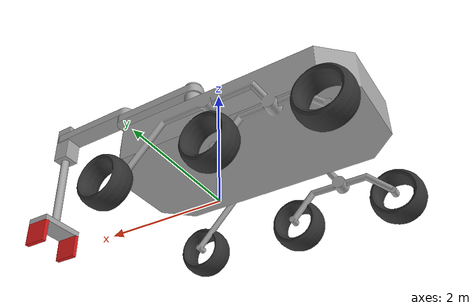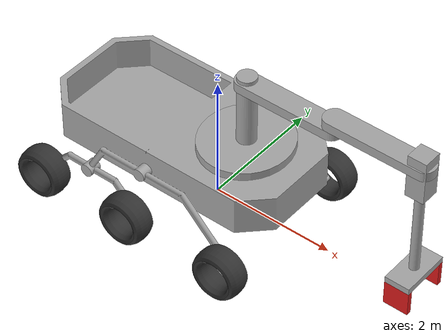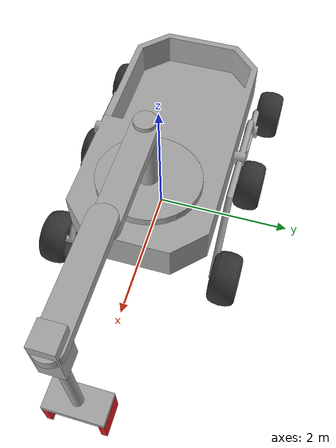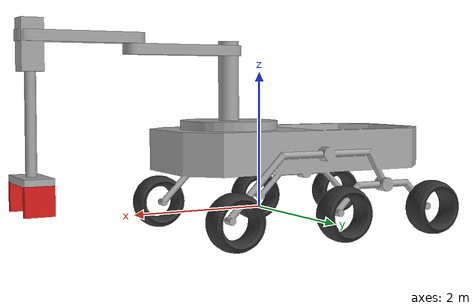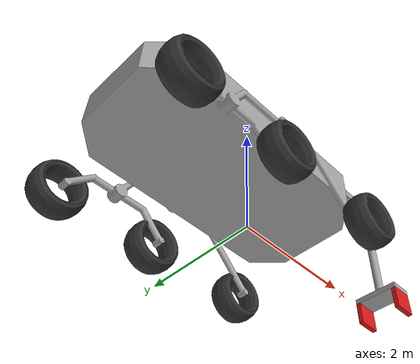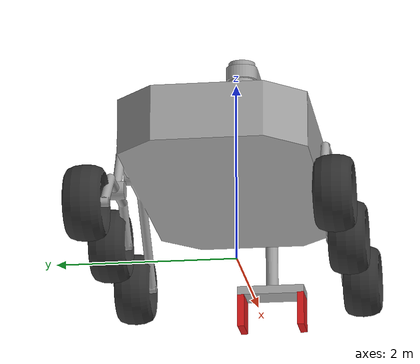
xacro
<?xml version="1.0"?>
<robot name="robot_Practica2" xmlns:xacro="http://wiki.ros.org/xacro">

    <xacro:include filename="$(find rover_description)/urdf/utils/utils.urdf.xacro"/>
    <xacro:include filename="$(find rover_description)/urdf/base/robot_base.urdf.xacro"/>
    <xacro:include filename="$(find rover_description)/urdf/wheels/rover_wheel.urdf.xacro"/>
    <xacro:include filename="$(find rover_description)/urdf/arm/scara.urdf.xacro"/>
    <xacro:include filename="$(find rover_description)/urdf/arm/gripper.urdf.xacro"/>
    <xacro:include filename="$(find rover_description)/urdf/sensors/imu_sensor.urdf.xacro"/>
    <xacro:include filename="$(find rover_description)/urdf/sensors/camera.urdf.xacro"/>
    <xacro:include filename="$(find rover_description)/urdf/sensors/sensors.urdf.xacro"/>
    <xacro:include filename="$(find rover_moveit_config)/config/robot_Practica2.ros2_control.xacro"/>

    <xacro:property name="PI" value="3.1415926535897931"/>

    <xacro:property name="wheelA_1_xyz" value="1.07987 -1.32843 -0.83009"/>
    <xacro:property name="wheelA_2_xyz" value="-0.65003 -1.32843 -0.83009"/>
    <xacro:property name="wheelA_3_xyz" value="-2.23201 -1.32843 -0.83009"/>

    <xacro:property name="wheelB_1_xyz" value="1.07987 1.32831 -0.83009"/>
    <xacro:property name="wheelB_2_xyz" value="-0.65003 1.32832 -0.83009"/>
    <xacro:property name="wheelB_3_xyz" value="-2.23201 1.32832 -0.83009"/>

    <xacro:arg name="prefix" default=""/>
    <xacro:arg name="config_controllers" default="$(find rover_description)/config/rover_controllers.yaml"/>
    <xacro:arg name="moveit_controllers" default="$(find rover_moveit_config)/config/ros2_controllers.yaml"/>
    <xacro:arg name="initial_positions_file" default="$(find rover_moveit_config)/config/initial_positions.yaml"/>

    <xacro:robot_base prefix="$(arg prefix)"/>

    <xacro:rover_wheel prefix="wheelA_1" parent="base_link">
        <origin xyz="${wheelA_1_xyz}" rpy="1.57080 0 0"/>
    </xacro:rover_wheel>

    <xacro:rover_wheel prefix="wheelA_2" parent="base_link">
        <origin xyz="${wheelA_2_xyz}" rpy="1.57080 0 0"/>
    </xacro:rover_wheel>

    <xacro:rover_wheel prefix="wheelA_3" parent="base_link">
        <origin xyz="${wheelA_3_xyz}" rpy="1.57080 0 0"/>
    </xacro:rover_wheel>

    <xacro:rover_wheel prefix="wheelB_1" parent="base_link">
        <origin xyz="${wheelB_1_xyz}" rpy="1.57080 0 0"/>
    </xacro:rover_wheel>

    <xacro:rover_wheel prefix="wheelB_2" parent="base_link">
        <origin xyz="${wheelB_2_xyz}" rpy="1.57080 0 0"/>
    </xacro:rover_wheel>

    <xacro:rover_wheel prefix="wheelB_3" parent="base_link">
        <origin xyz="${wheelB_3_xyz}" rpy="1.57080 0 0"/>
    </xacro:rover_wheel>

    <xacro:scara_arm
        prefix="$(arg prefix)"
        parent="base_link"/>

    <xacro:robot_gripper
        prefix="$(arg prefix)"
        parent="base_endEffector_link"/>

    <xacro:robot_sensors prefix="$(arg prefix)"/>

    <xacro:robot_Practica2_ros2_control
        name="GazeboSimSystem"
        initial_positions_file="$(arg initial_positions_file)"/>

    <gazebo>
        <plugin filename="libgz_ros2_control-system.so"
                name="gz_ros2_control::GazeboSimROS2ControlPlugin">
            <parameters>$(arg config_controllers)</parameters>
            <parameters>$(arg moveit_controllers)</parameters>
            <controller_manager_name>controller_manager</controller_manager_name>
            <hold_joints>true</hold_joints>
            <position_proportional_gain>0.1</position_proportional_gain>
        </plugin>
    </gazebo>

</robot>

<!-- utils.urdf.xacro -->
<robot xmlns:xacro="http://wiki.ros.org/xacro">

    <xacro:property name="mesh_dir" value="package://rover_description/meshes/dae"/>

    <xacro:macro name="solid_cuboid_inertia" params="m w h d">
        <inertia ixx="${(m*(h*h+d*d))/12.0}" ixy="0.0" ixz="0.0"
                iyy="${(m*(w*w+d*d))/12.0}" iyz="0.0"
                izz="${(m*(w*w+h*h))/12.0}"/>
    </xacro:macro>

</robot>

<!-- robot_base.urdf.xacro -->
<robot xmlns:xacro="http://wiki.ros.org/xacro">

    <xacro:macro name="robot_base" params="prefix">

        <link name="base_footprint"/>

        <joint name="base_footprint_joint" type="fixed">
        <parent link="base_footprint"/>
        <child link="base_link"/>
        <origin xyz="0 0 0.83009" rpy="0 0 0"/>
        </joint>

        <link name="base_link">

        <!-- SUELO CAJA -->
        <collision name="floor_right">
            <origin xyz="-1.35 0 -0.15" rpy="0 0 0"/>
            <geometry>
            <box size="1.9 1.9 0.05"/>
            </geometry>
        </collision>

        <!-- PARED DERECHA -->
        <collision name="wall_right">
            <origin xyz="-2.30 0 0.10" rpy="0 0 0"/>
            <geometry>
            <box size="0.05 1.9 0.6"/>
            </geometry>
        </collision>

        <!-- PARED CENTRAL -->
        <collision name="wall_middle">
            <origin xyz="-0.40 0 0.10" rpy="0 0 0"/>
            <geometry>
            <box size="0.05 1.9 0.6"/>
            </geometry>
        </collision>

        <!-- PARED TRASERA -->
        <collision name="wall_back">
            <origin xyz="-1.35 0.95 0.10" rpy="0 0 0"/>
            <geometry>
            <box size="1.9 0.05 0.6"/>
            </geometry>
        </collision>

        <!-- PARED FRONTAL -->
        <collision name="wall_front">
            <origin xyz="-1.35 -0.95 0.10" rpy="0 0 0"/>
            <geometry>
            <box size="1.9 0.05 0.6"/>
            </geometry>
        </collision>

        <!-- PLATAFORMA -->
        <collision name="platform_left">
            <origin xyz="0.60 0 0.10" rpy="0 0 0"/>
            <geometry>
            <box size="2.4 2.2 0.05"/>
            </geometry>
        </collision>

        <inertial>
            <origin xyz="0 0 0" rpy="0 0 0"/>
            <mass value="80.00000"/>
            <inertia ixx="41.28289" ixy="-0.00802" ixz="9.08471"
                    iyy="106.15301" iyz="0.02896" izz="122.29248"/>
        </inertial>

        <visual name="base">
            <origin xyz="0 0 0" rpy="0 0 3.14159"/>
            <geometry>
            <mesh filename="${mesh_dir}/Cube.005.dae" scale="2.00000 1.00000 0.05000"/>
            </geometry>
            <material name="base_grey">
            <color rgba="0.65 0.65 0.65 1.0"/>
            </material>
        </visual>

        </link>

        <gazebo reference="base_link">
            <material>
                <ambient>0.65 0.65 0.65 1.0</ambient>
                <diffuse>0.65 0.65 0.65 1.0</diffuse>
                <specular>0.10 0.10 0.10 1.0</specular>
            </material>
        </gazebo>

    </xacro:macro>

</robot>

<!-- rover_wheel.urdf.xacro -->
<robot name="wheel" xmlns:xacro="http://wiki.ros.org/xacro">

  <xacro:macro name="rover_wheel" params="prefix parent *origin">

    <xacro:property name="mesh_name" value="Torus.dae"/>
    <xacro:property name="visual_z" value="0.04000"/>
    <xacro:property name="collision_z" value="0.04000"/>
    <xacro:property name="inertial_z" value="0.04000"/>

    <xacro:property name="mass_value" value="5.00000"/>
    <xacro:property name="ixx_value" value="0.22705"/>
    <xacro:property name="ixy_value" value="0.00000"/>
    <xacro:property name="ixz_value" value="0.00000"/>
    <xacro:property name="iyy_value" value="0.37534"/>
    <xacro:property name="iyz_value" value="0.00000"/>
    <xacro:property name="izz_value" value="0.22705"/>

    <xacro:if value="${prefix == 'wheelA_1'}">
        <xacro:property name="mesh_name" value="Torus.005.dae"/>
        <xacro:property name="visual_z" value="-0.04000"/>
        <xacro:property name="collision_z" value="-0.04000"/>
        <xacro:property name="inertial_z" value="-0.04000"/>
    </xacro:if>

    <xacro:if value="${prefix == 'wheelA_2'}">
        <xacro:property name="mesh_name" value="Torus.004.dae"/>
        <xacro:property name="visual_z" value="-0.04000"/>
        <xacro:property name="collision_z" value="-0.04000"/>
        <xacro:property name="inertial_z" value="-0.04000"/>
    </xacro:if>

    <xacro:if value="${prefix == 'wheelA_3'}">
        <xacro:property name="mesh_name" value="Torus.003.dae"/>
        <xacro:property name="visual_z" value="-0.04000"/>
        <xacro:property name="collision_z" value="-0.04000"/>
        <xacro:property name="inertial_z" value="-0.04000"/>
    </xacro:if>

    <xacro:if value="${prefix == 'wheelB_1'}">
        <xacro:property name="mesh_name" value="Torus.dae"/>
        <xacro:property name="visual_z" value="0.04000"/>
        <xacro:property name="collision_z" value="0.04000"/>
        <xacro:property name="inertial_z" value="0.00000"/>

        <xacro:property name="mass_value" value="2.0"/>
        <xacro:property name="ixx_value" value="0.05"/>
        <xacro:property name="ixy_value" value="0.0"/>
        <xacro:property name="ixz_value" value="0.0"/>
        <xacro:property name="iyy_value" value="0.05"/>
        <xacro:property name="iyz_value" value="0.0"/>
        <xacro:property name="izz_value" value="0.05"/>
    </xacro:if>

    <xacro:if value="${prefix == 'wheelB_2'}">
        <xacro:property name="mesh_name" value="Torus.001.dae"/>
    </xacro:if>

    <xacro:if value="${prefix == 'wheelB_3'}">
        <xacro:property name="mesh_name" value="Torus.002.dae"/>
    </xacro:if>

    <joint name="${prefix}_link_joint" type="continuous">
        <parent link="${parent}"/>
        <child link="${prefix}_link"/>
        <xacro:insert_block name="origin"/>
        <axis xyz="0 0 1"/>
        <limit effort="500.0" velocity="40.0"/>
    </joint>

    <link name="${prefix}_link">

      <collision name="${prefix}_collision">
        <origin xyz="0 0 0" rpy="0 0 0"/>
        <geometry>
          <cylinder radius="0.30" length="0.12"/>
        </geometry>
      </collision>

      <visual name="${prefix}">
        <origin xyz="0 0 ${visual_z}" rpy="0 0 0"/>
        <geometry>
          <mesh filename="${mesh_dir}/${mesh_name}" scale="0.32000 0.32000 0.80000"/>
        </geometry>
        <material name="wheel_dark">
          <color rgba="0.20 0.20 0.20 1.0"/>
        </material>
      </visual>

      <inertial>
        <origin xyz="0 0 ${inertial_z}" rpy="0 0 0"/>
        <mass value="${mass_value}"/>
        <inertia ixx="${ixx_value}" ixy="${ixy_value}" ixz="${ixz_value}"
                iyy="${iyy_value}" iyz="${iyz_value}" izz="${izz_value}"/>
      </inertial>

    </link>

    <gazebo reference="${prefix}_link">
      <material>
        <ambient>0.20 0.20 0.20 1.0</ambient>
        <diffuse>0.20 0.20 0.20 1.0</diffuse>
        <specular>0.05 0.05 0.05 1.0</specular>
      </material>

      <!-- Menos fricción lateral para permitir skid steering -->
      <mu1>0.8</mu1>
      <mu2>0.02</mu2>
      <slip1>0.0</slip1>
      <slip2>1.0</slip2>
    </gazebo>

  </xacro:macro>

</robot>

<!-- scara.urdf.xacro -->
<robot xmlns:xacro="http://wiki.ros.org/xacro">

    <xacro:macro name="scara_arm" params="prefix parent">

        <joint name="base_gripper_link_joint" type="fixed">
        <parent link="${parent}"/>
        <child link="base_gripper_link"/>
        <origin xyz="0.51563 -0.00006 0.72658" rpy="0 0 0"/>
        </joint>

        <link name="base_gripper_link">
        <collision name="base_gripper_collision">
            <origin xyz="0 0 0" rpy="0 0 0"/>
            <geometry>
            <mesh filename="${mesh_dir}/Cylinder.dae" scale="0.70000 0.75000 0.07647"/>
            </geometry>
        </collision>
        <visual name="base_gripper">
            <origin xyz="0 0 0" rpy="0 0 0"/>
            <geometry>
            <mesh filename="${mesh_dir}/Cylinder.dae" scale="0.70000 0.75000 0.07647"/>
            </geometry>
            <material name="arm_grey">
            <color rgba="0.65 0.65 0.65 1.0"/>
            </material>
        </visual>
        <inertial>
            <origin xyz="0 0 -0.17512" rpy="0 0 0"/>
            <mass value="20.00000"/>
            <inertia ixx="3.73641" ixy="0" ixz="0" iyy="3.48927" iyz="0" izz="3.61756"/>
        </inertial>
        </link>

        <joint name="arm_1_link_joint" type="revolute">
        <parent link="base_gripper_link"/>
        <child link="arm_1_link"/>
        <origin xyz="0 0 0.74424" rpy="0 0 0"/>
        <axis xyz="0 0 1"/>
        <limit lower="-3.14" upper="3.14" effort="50" velocity="2"/>
        </joint>

        <link name="arm_1_link">
        <collision name="arm_1_collision">
            <origin xyz="0.72000 0.00000 0.01000" rpy="0 0 0"/>
            <geometry>
            <mesh filename="${mesh_dir}/Cylinder.002.dae" scale="0.15000 0.17500 0.07500"/>
            </geometry>
        </collision>
        <visual name="arm_1">
            <origin xyz="0.72000 0.00000 0.01000" rpy="0 0 0"/>
            <geometry>
            <mesh filename="${mesh_dir}/Cylinder.002.dae" scale="0.15000 0.17500 0.07500"/>
            </geometry>
            <material name="arm_grey">
                <color rgba="0.65 0.65 0.65 1.0"/>
            </material>
        </visual>
        <inertial>
            <origin xyz="0 0 0" rpy="0 0 0"/>
            <mass value="5.0"/>
            <inertia ixx="0.1" ixy="0.0" ixz="0.0" iyy="0.1" iyz="0.0" izz="0.1"/>
        </inertial>
        </link>

        <joint name="arm_2_link_joint" type="revolute">
        <parent link="arm_1_link"/>
        <child link="arm_2_link"/>
        <origin xyz="1.46 0 0.15" rpy="0 0 0"/>
        <axis xyz="0 0 1"/>
        <limit lower="-2.356" upper="2.356" effort="50" velocity="2"/>
        </joint>

        <link name="arm_2_link">
        <visual name="arm_2">
            <origin xyz="0.76000 0.00000 0.01000" rpy="0 0 0"/>
            <geometry>
            <mesh filename="${mesh_dir}/Cylinder.004.dae" scale="0.15000 0.17500 0.07500"/>
            </geometry>
            <material name="arm_grey">
                <color rgba="0.65 0.65 0.65 1.0"/>
            </material>
        </visual>
        <inertial>
            <origin xyz="0 0 0" rpy="0 0 0"/>
            <mass value="5.0"/>
            <inertia ixx="0.1" ixy="0.0" ixz="0.0" iyy="0.1" iyz="0.0" izz="0.1"/>
        </inertial>
        </link>

        <joint name="arm_3_link_joint" type="revolute">
        <parent link="arm_2_link"/>
        <child link="arm_3_link"/>
        <origin xyz="1.46 0 -0.11" rpy="0 0 0"/>
        <axis xyz="0 0 1"/>
        <limit lower="-3.14" upper="3.14" effort="50" velocity="2"/>
        </joint>

        <link name="arm_3_link">
        <collision name="arm_3_collision">
            <origin xyz="0 0 0" rpy="0 0 0"/>
            <geometry>
            <mesh filename="${mesh_dir}/Cylinder.001.dae" scale="0.15000 0.15000 0.35000"/>
            </geometry>
        </collision>
        <visual name="arm_3">
            <origin xyz="0 0 0" rpy="0 0 0"/>
            <geometry>
            <box size="0.30000 0.30000 0.70000"/>
            </geometry>
            <material name="arm_grey">
                <color rgba="0.65 0.65 0.65 1.0"/>
            </material>
        </visual>
        <inertial>
            <origin xyz="0 0 0" rpy="0 0 0"/>
            <mass value="3.51000"/>
            <inertia ixx="0.16965" ixy="0.00000" ixz="0.00000"
                    iyy="0.16965" iyz="0.00000" izz="0.05265"/>
        </inertial>
        </link>

        <joint name="arm_4_link_joint" type="prismatic">
        <parent link="arm_3_link"/>
        <child link="arm_4_link"/>
        <origin xyz="0 0 -1.05" rpy="0 0 0"/>
        <axis xyz="0 0 1"/>
        <limit lower="-0.38" upper="1.5" effort="50" velocity="1.0"/>
        </joint>

        <link name="arm_4_link">
        <collision name="arm_4_collision">
            <origin xyz="0 0 0" rpy="0 0 0"/>
            <geometry>
            <mesh filename="${mesh_dir}/Cylinder.003.dae" scale="0.07500 0.07500 0.75000"/>
            </geometry>
        </collision>
        <visual name="arm_4">
            <origin xyz="0 0 0" rpy="0 0 0"/>
            <geometry>
            <cylinder radius="0.07500" length="1.50000"/>
            </geometry>
            <material name="arm_grey">
                <color rgba="0.65 0.65 0.65 1.0"/>
            </material>
        </visual>
        <inertial>
            <origin xyz="0 0 0" rpy="0 0 0"/>
            <mass value="1.00000"/>
            <inertia ixx="0.18891" ixy="0.00000" ixz="0.00000"
                    iyy="0.18891" iyz="0.00000" izz="0.00281"/>
        </inertial>
        </link>

        <joint name="base_endEffector_link_joint" type="fixed">
        <parent link="arm_4_link"/>
        <child link="base_endEffector_link"/>
        <origin xyz="0 0 -0.73" rpy="0 0 0"/>
        </joint>

        <link name="base_endEffector_link">
        <collision name="base_endEffector_collision">
            <origin xyz="0 0 0" rpy="0 0 0"/>
            <geometry>
            <mesh filename="${mesh_dir}/Cube.001.dae" scale="0.20000 0.40000 0.05000"/>
            </geometry>
        </collision>
        <visual name="base_endEffector">
            <origin xyz="0 0 0" rpy="0 0 0"/>
            <geometry>
            <box size="0.40000 0.80000 0.10000"/>
            </geometry>
            <material name="arm_grey">
                <color rgba="0.65 0.65 0.65 1.0"/>
            </material>
        </visual>
        <inertial>
            <origin xyz="0 0 0" rpy="0 0 0"/>
            <mass value="1.00000"/>
            <inertia ixx="0.05417" ixy="0.00000" ixz="0.00000"
                    iyy="0.01417" iyz="0.00000" izz="0.06667"/>
        </inertial>
        </link>

    </xacro:macro>

</robot>

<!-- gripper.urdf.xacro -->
<robot xmlns:xacro="http://wiki.ros.org/xacro">

    <xacro:macro name="robot_gripper" params="prefix parent">

        <joint name="gripper_1_link_joint" type="prismatic">
        <parent link="${parent}"/>
        <child link="gripper_1_link"/>
        <origin xyz="0 -0.36 -0.24" rpy="-1.5708 0 0"/>
        <axis xyz="0 0 1"/>
        <limit lower="-0.02" upper="0.25" effort="100" velocity="1.0"/>
        </joint>

        <link name="gripper_1_link">
        <collision name="gripper_1_collision">
            <origin xyz="0 0 0" rpy="1.57080 0 0"/>
            <geometry>
            <mesh filename="${mesh_dir}/Cube.008.dae" scale="0.20000 0.04000 0.20000"/>
            </geometry>
        </collision>
        <visual name="gripper_1">
            <origin xyz="0 0 0" rpy="1.57080 0 0"/>
            <geometry>
            <box size="0.40000 0.08000 0.40000"/>
            </geometry>
            <material name="gripper_red">
                <color rgba="0.85 0.10 0.10 1.0"/>
            </material>
        </visual>
        <inertial>
            <origin xyz="0 0 0" rpy="0 0 0"/>
            <mass value="1.00000"/>
            <inertia ixx="0.01387" ixy="0.00000" ixz="0.00000"
                    iyy="0.02667" iyz="0.00000" izz="0.01387"/>
        </inertial>
        </link>

        <joint name="gripper_2_link_joint" type="prismatic">
        <parent link="${parent}"/>
        <child link="gripper_2_link"/>
        <origin xyz="0 0.36 -0.24" rpy="1.5708 0 0"/>
        <axis xyz="0 0 1"/>
        <limit lower="-0.02" upper="0.25" effort="100" velocity="1.0"/>
        </joint>

        <link name="gripper_2_link">
        <collision name="gripper_2_collision">
            <origin xyz="0 0 0" rpy="-1.57080 0 0"/>
            <geometry>
            <mesh filename="${mesh_dir}/Cube.009.dae" scale="0.20000 0.04000 0.20000"/>
            </geometry>
        </collision>
        <visual name="gripper_2">
            <origin xyz="0 0 0" rpy="-1.57080 0 0"/>
            <geometry>
            <box size="0.40000 0.08000 0.40000"/>
            </geometry>
            <material name="gripper_red">
                <color rgba="0.85 0.10 0.10 1.0"/>
            </material>
        </visual>
        <inertial>
            <origin xyz="0 0 0" rpy="0 0 0"/>
            <mass value="1.00000"/>
            <inertia ixx="0.01387" ixy="0.00000" ixz="0.00000"
                    iyy="0.02667" iyz="0.00000" izz="0.01387"/>
        </inertial>
        </link>

    </xacro:macro>

</robot>

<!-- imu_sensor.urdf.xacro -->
<robot xmlns:xacro="http://wiki.ros.org/xacro">

    <xacro:macro name="sensor_imu" params="prefix parent xyz topic">

        <joint name="${prefix}_joint" type="fixed">
        <parent link="${parent}"/>
        <child link="${prefix}_link"/>
        <origin xyz="${xyz}" rpy="0 0 0"/>
        </joint>

        <link name="${prefix}_link"/>

        <gazebo reference="${prefix}_link">
        <sensor name="${prefix}_sensor" type="imu">
            <always_on>1</always_on>
            <update_rate>30</update_rate>
            <topic>${topic}</topic>
        </sensor>
        </gazebo>

    </xacro:macro>

</robot>

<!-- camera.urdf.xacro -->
<robot xmlns:xacro="http://wiki.ros.org/xacro">

    <xacro:macro name="sensor_camera"
                params="frame_prefix parent xyz rpy horizontal_fov video_width video_height">

        <joint name="${frame_prefix}_camera_joint" type="fixed">
        <parent link="${parent}"/>
        <child link="${frame_prefix}_camera_frame"/>
        <origin xyz="${xyz}" rpy="${rpy}"/>
        </joint>

        <link name="${frame_prefix}_camera_frame"/>

        <joint name="${frame_prefix}_camera_optical_joint" type="fixed">
        <parent link="${frame_prefix}_camera_frame"/>
        <child link="${frame_prefix}_camera_optical_frame"/>
        <origin xyz="0 0 0" rpy="-1.57079632679 0 -1.57079632679"/>
        </joint>

        <link name="${frame_prefix}_camera_optical_frame"/>

        <gazebo reference="${frame_prefix}_camera_frame">
        <sensor name="${frame_prefix}_sensor" type="camera">
            <visualize>true</visualize>
            <update_rate>30</update_rate>
            <topic>/${frame_prefix}/image</topic>

            <camera>
            <horizontal_fov>${horizontal_fov}</horizontal_fov>
            <image>
                <width>${video_width}</width>
                <height>${video_height}</height>
                <format>R8G8B8</format>
            </image>
            <clip>
                <near>0.10</near>
                <far>15.0</far>
            </clip>
            <noise>
                <type>gaussian</type>
                <mean>0.0</mean>
                <stddev>0.007</stddev>
            </noise>
            <optical_frame_id>${frame_prefix}_camera_optical_frame</optical_frame_id>
            </camera>
        </sensor>
        </gazebo>

    </xacro:macro>

</robot>
